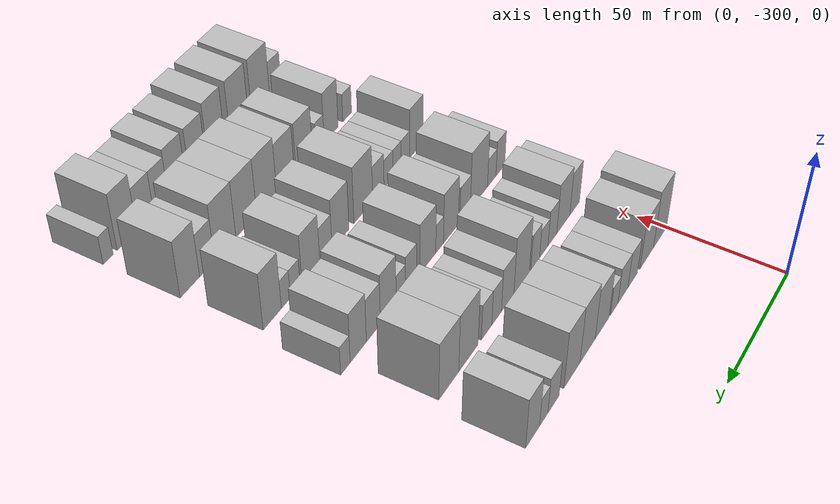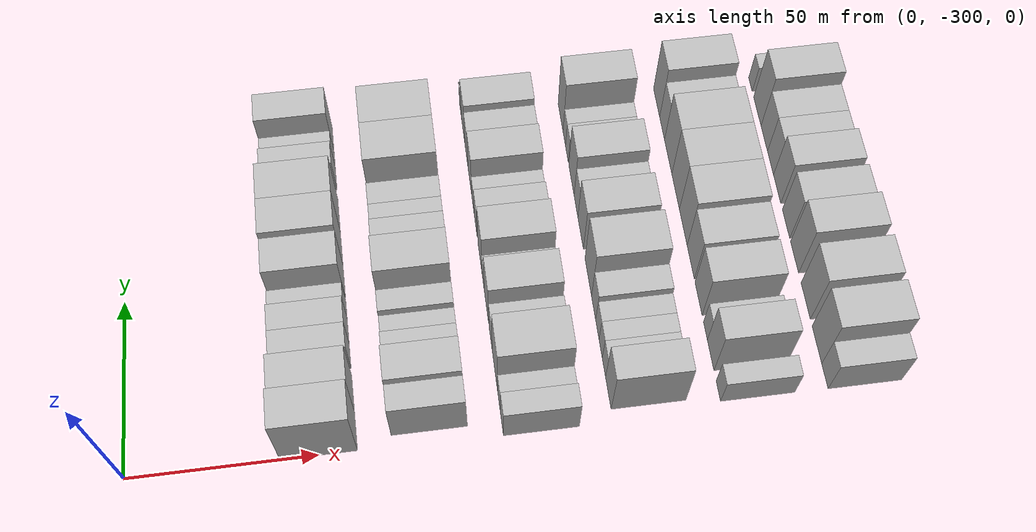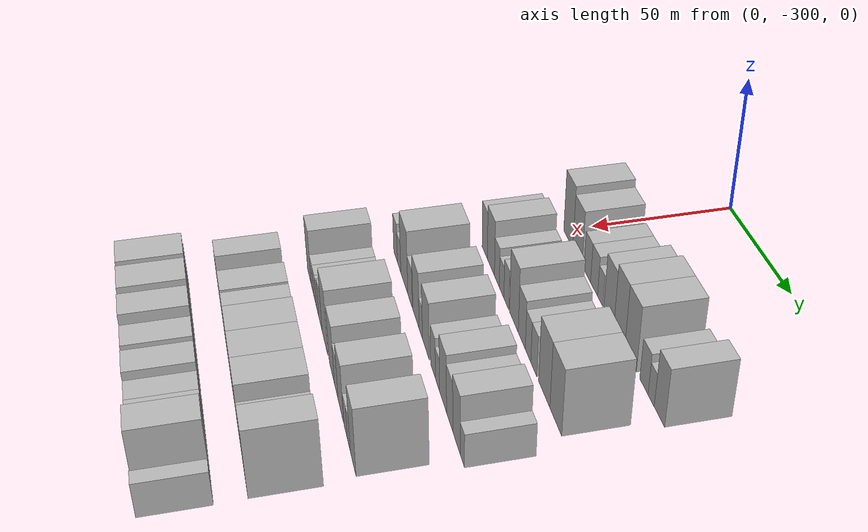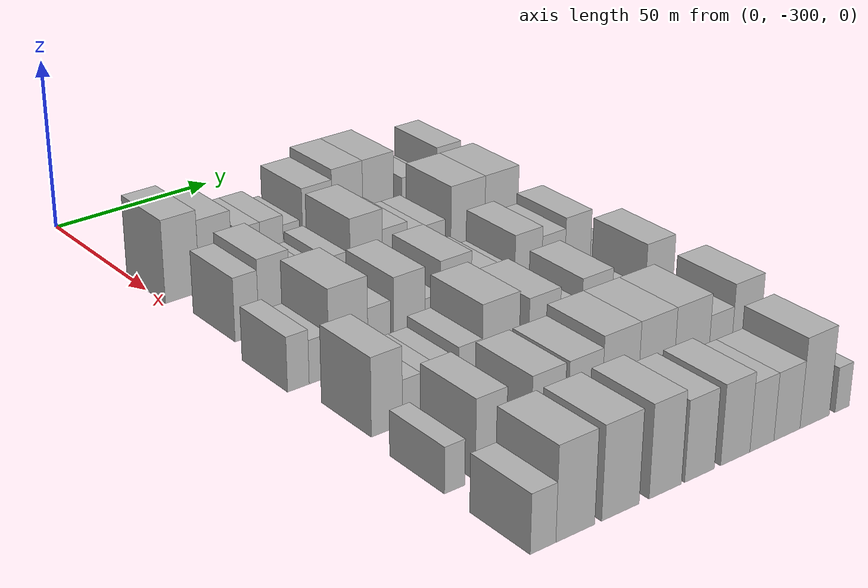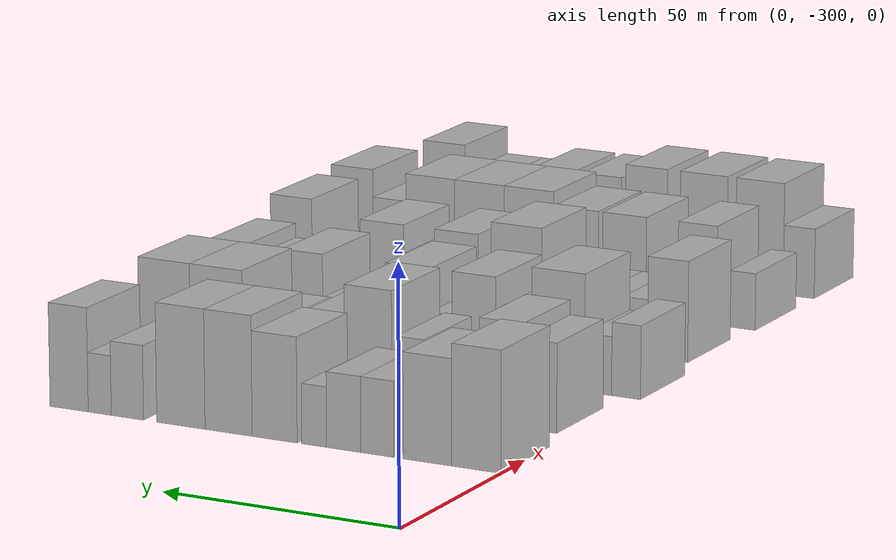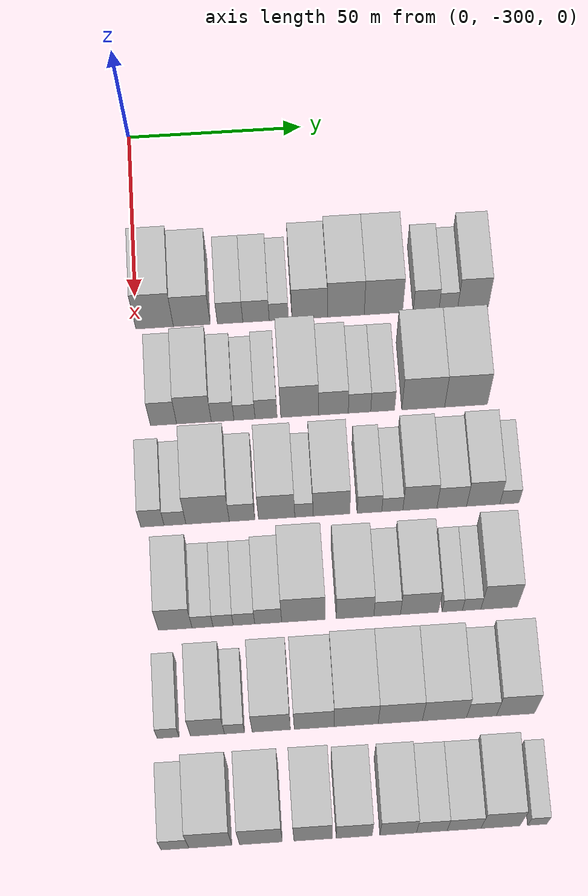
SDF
<sdf version="1.6">
 <world name="default">
  <model name="building_23">
   <static>1</static>
   <pose>50.0000 -294.7615 0 0.000000 0.000000 0.000000</pose>
   <link name="link">
    <pose>0 0 12.00 0 0 0</pose>
    <collision name="collision"><geometry><box><size>20.0000 10.5422 24.0000</size></box></geometry></collision>
    <visual name="visual">
     <cast_shadows>0</cast_shadows>
     <geometry><box><size>20.0000 10.5422 24.0000</size></box></geometry>
     <material>
      <script>
       <uri>model://HANNAS_wall/materials/scripts</uri>
       <uri>model://HANNAS_wall/materials/textures</uri>
       <name>vrc/HANNAS_wall</name>
      </script>
     </material>
    </visual>
   </link>
  </model>
  <model name="building_24">
   <static>1</static>
   <pose>50.0000 -284.2985 0 0.000000 0.000000 0.000000</pose>
   <link name="link">
    <pose>0 0 10.50 0 0 0</pose>
    <collision name="collision"><geometry><box><size>20.0000 10.3838 21.0000</size></box></geometry></collision>
    <visual name="visual">
     <cast_shadows>0</cast_shadows>
     <geometry><box><size>20.0000 10.3838 21.0000</size></box></geometry>
     <material>
      <script>
       <uri>model://HANNAS_wall/materials/scripts</uri>
       <uri>model://HANNAS_wall/materials/textures</uri>
       <name>vrc/HANNAS_wall</name>
      </script>
     </material>
    </visual>
   </link>
  </model>
  <model name="building_25">
   <static>1</static>
   <pose>50.0000 -273.5292 0 0.000000 0.000000 0.000000</pose>
   <link name="link">
    <pose>0 0 7.50 0 0 0</pose>
    <collision name="collision"><geometry><box><size>20.0000 7.1548 15.0000</size></box></geometry></collision>
    <visual name="visual">
     <cast_shadows>0</cast_shadows>
     <geometry><box><size>20.0000 7.1548 15.0000</size></box></geometry>
     <material>
      <script>
       <uri>model://HANNAS_wall/materials/scripts</uri>
       <uri>model://HANNAS_wall/materials/textures</uri>
       <name>vrc/HANNAS_wall</name>
      </script>
     </material>
    </visual>
   </link>
  </model>
  <model name="building_26">
   <static>1</static>
   <pose>50.0000 -266.2333 0 0.000000 0.000000 0.000000</pose>
   <link name="link">
    <pose>0 0 7.50 0 0 0</pose>
    <collision name="collision"><geometry><box><size>20.0000 7.4371 15.0000</size></box></geometry></collision>
    <visual name="visual">
     <cast_shadows>0</cast_shadows>
     <geometry><box><size>20.0000 7.4371 15.0000</size></box></geometry>
     <material>
      <script>
       <uri>model://HANNAS_wall/materials/scripts</uri>
       <uri>model://HANNAS_wall/materials/textures</uri>
       <name>vrc/HANNAS_wall</name>
      </script>
     </material>
    </visual>
   </link>
  </model>
  <model name="building_27">
   <static>1</static>
   <pose>50.0000 -259.8109 0 0.000000 0.000000 0.000000</pose>
   <link name="link">
    <pose>0 0 6.00 0 0 0</pose>
    <collision name="collision"><geometry><box><size>20.0000 5.4075 12.0000</size></box></geometry></collision>
    <visual name="visual">
     <cast_shadows>0</cast_shadows>
     <geometry><box><size>20.0000 5.4075 12.0000</size></box></geometry>
     <material>
      <script>
       <uri>model://HANNAS_wall/materials/scripts</uri>
       <uri>model://HANNAS_wall/materials/textures</uri>
       <name>vrc/HANNAS_wall</name>
      </script>
     </material>
    </visual>
   </link>
  </model>
  <model name="building_28">
   <static>1</static>
   <pose>50.0000 -251.1375 0 0.000000 0.000000 0.000000</pose>
   <link name="link">
    <pose>0 0 10.50 0 0 0</pose>
    <collision name="collision"><geometry><box><size>20.0000 9.9392 21.0000</size></box></geometry></collision>
    <visual name="visual">
     <cast_shadows>0</cast_shadows>
     <geometry><box><size>20.0000 9.9392 21.0000</size></box></geometry>
     <material>
      <script>
       <uri>model://HANNAS_wall/materials/scripts</uri>
       <uri>model://HANNAS_wall/materials/textures</uri>
       <name>vrc/HANNAS_wall</name>
      </script>
     </material>
    </visual>
   </link>
  </model>
  <model name="building_29">
   <static>1</static>
   <pose>50.0000 -240.9504 0 0.000000 0.000000 0.000000</pose>
   <link name="link">
    <pose>0 0 12.00 0 0 0</pose>
    <collision name="collision"><geometry><box><size>20.0000 10.4351 24.0000</size></box></geometry></collision>
    <visual name="visual">
     <cast_shadows>0</cast_shadows>
     <geometry><box><size>20.0000 10.4351 24.0000</size></box></geometry>
     <material>
      <script>
       <uri>model://HANNAS_wall/materials/scripts</uri>
       <uri>model://HANNAS_wall/materials/textures</uri>
       <name>vrc/HANNAS_wall</name>
      </script>
     </material>
    </visual>
   </link>
  </model>
  <model name="building_30">
   <static>1</static>
   <pose>50.0000 -230.3285 0 0.000000 0.000000 0.000000</pose>
   <link name="link">
    <pose>0 0 12.00 0 0 0</pose>
    <collision name="collision"><geometry><box><size>20.0000 10.8086 24.0000</size></box></geometry></collision>
    <visual name="visual">
     <cast_shadows>0</cast_shadows>
     <geometry><box><size>20.0000 10.8086 24.0000</size></box></geometry>
     <material>
      <script>
       <uri>model://HANNAS_wall/materials/scripts</uri>
       <uri>model://HANNAS_wall/materials/textures</uri>
       <name>vrc/HANNAS_wall</name>
      </script>
     </material>
    </visual>
   </link>
  </model>
  <model name="building_31">
   <static>1</static>
   <pose>50.0000 -218.2917 0 0.000000 0.000000 0.000000</pose>
   <link name="link">
    <pose>0 0 7.50 0 0 0</pose>
    <collision name="collision"><geometry><box><size>20.0000 7.2650 15.0000</size></box></geometry></collision>
    <visual name="visual">
     <cast_shadows>0</cast_shadows>
     <geometry><box><size>20.0000 7.2650 15.0000</size></box></geometry>
     <material>
      <script>
       <uri>model://HANNAS_wall/materials/scripts</uri>
       <uri>model://HANNAS_wall/materials/textures</uri>
       <name>vrc/HANNAS_wall</name>
      </script>
     </material>
    </visual>
   </link>
  </model>
  <model name="building_32">
   <static>1</static>
   <pose>50.0000 -212.0230 0 0.000000 0.000000 0.000000</pose>
   <link name="link">
    <pose>0 0 6.00 0 0 0</pose>
    <collision name="collision"><geometry><box><size>20.0000 5.2725 12.0000</size></box></geometry></collision>
    <visual name="visual">
     <cast_shadows>0</cast_shadows>
     <geometry><box><size>20.0000 5.2725 12.0000</size></box></geometry>
     <material>
      <script>
       <uri>model://HANNAS_wall/materials/scripts</uri>
       <uri>model://HANNAS_wall/materials/textures</uri>
       <name>vrc/HANNAS_wall</name>
      </script>
     </material>
    </visual>
   </link>
  </model>
  <model name="building_33">
   <static>1</static>
   <pose>50.0000 -205.0334 0 0.000000 0.000000 0.000000</pose>
   <link name="link">
    <pose>0 0 10.50 0 0 0</pose>
    <collision name="collision"><geometry><box><size>20.0000 8.7068 21.0000</size></box></geometry></collision>
    <visual name="visual">
     <cast_shadows>0</cast_shadows>
     <geometry><box><size>20.0000 8.7068 21.0000</size></box></geometry>
     <material>
      <script>
       <uri>model://HANNAS_wall/materials/scripts</uri>
       <uri>model://HANNAS_wall/materials/textures</uri>
       <name>vrc/HANNAS_wall</name>
      </script>
     </material>
    </visual>
   </link>
  </model>
  <model name="building_130">
   <static>1</static>
   <pose>79.0000 -293.4210 0 0.000000 0.000000 0.000000</pose>
   <link name="link">
    <pose>0 0 9.00 0 0 0</pose>
    <collision name="collision"><geometry><box><size>20.0000 7.2270 18.0000</size></box></geometry></collision>
    <visual name="visual">
     <cast_shadows>0</cast_shadows>
     <geometry><box><size>20.0000 7.2270 18.0000</size></box></geometry>
     <material>
      <script>
       <uri>model://HANNAS_wall/materials/scripts</uri>
       <uri>model://HANNAS_wall/materials/textures</uri>
       <name>vrc/HANNAS_wall</name>
      </script>
     </material>
    </visual>
   </link>
  </model>
  <model name="building_131">
   <static>1</static>
   <pose>79.0000 -285.0231 0 0.000000 0.000000 0.000000</pose>
   <link name="link">
    <pose>0 0 10.50 0 0 0</pose>
    <collision name="collision"><geometry><box><size>20.0000 9.5687 21.0000</size></box></geometry></collision>
    <visual name="visual">
     <cast_shadows>0</cast_shadows>
     <geometry><box><size>20.0000 9.5687 21.0000</size></box></geometry>
     <material>
      <script>
       <uri>model://HANNAS_wall/materials/scripts</uri>
       <uri>model://HANNAS_wall/materials/textures</uri>
       <name>vrc/HANNAS_wall</name>
      </script>
     </material>
    </visual>
   </link>
  </model>
  <model name="building_132">
   <static>1</static>
   <pose>79.0000 -277.0917 0 0.000000 0.000000 0.000000</pose>
   <link name="link">
    <pose>0 0 7.50 0 0 0</pose>
    <collision name="collision"><geometry><box><size>20.0000 6.2942 15.0000</size></box></geometry></collision>
    <visual name="visual">
     <cast_shadows>0</cast_shadows>
     <geometry><box><size>20.0000 6.2942 15.0000</size></box></geometry>
     <material>
      <script>
       <uri>model://HANNAS_wall/materials/scripts</uri>
       <uri>model://HANNAS_wall/materials/textures</uri>
       <name>vrc/HANNAS_wall</name>
      </script>
     </material>
    </visual>
   </link>
  </model>
  <model name="building_133">
   <static>1</static>
   <pose>79.0000 -271.0221 0 0.000000 0.000000 0.000000</pose>
   <link name="link">
    <pose>0 0 6.00 0 0 0</pose>
    <collision name="collision"><geometry><box><size>20.0000 5.8450 12.0000</size></box></geometry></collision>
    <visual name="visual">
     <cast_shadows>0</cast_shadows>
     <geometry><box><size>20.0000 5.8450 12.0000</size></box></geometry>
     <material>
      <script>
       <uri>model://HANNAS_wall/materials/scripts</uri>
       <uri>model://HANNAS_wall/materials/textures</uri>
       <name>vrc/HANNAS_wall</name>
      </script>
     </material>
    </visual>
   </link>
  </model>
  <model name="building_134">
   <static>1</static>
   <pose>79.0000 -265.0410 0 0.000000 0.000000 0.000000</pose>
   <link name="link">
    <pose>0 0 7.50 0 0 0</pose>
    <collision name="collision"><geometry><box><size>20.0000 6.1172 15.0000</size></box></geometry></collision>
    <visual name="visual">
     <cast_shadows>0</cast_shadows>
     <geometry><box><size>20.0000 6.1172 15.0000</size></box></geometry>
     <material>
      <script>
       <uri>model://HANNAS_wall/materials/scripts</uri>
       <uri>model://HANNAS_wall/materials/textures</uri>
       <name>vrc/HANNAS_wall</name>
      </script>
     </material>
    </visual>
   </link>
  </model>
  <model name="building_135">
   <static>1</static>
   <pose>79.0000 -255.7287 0 0.000000 0.000000 0.000000</pose>
   <link name="link">
    <pose>0 0 12.00 0 0 0</pose>
    <collision name="collision"><geometry><box><size>20.0000 10.5073 24.0000</size></box></geometry></collision>
    <visual name="visual">
     <cast_shadows>0</cast_shadows>
     <geometry><box><size>20.0000 10.5073 24.0000</size></box></geometry>
     <material>
      <script>
       <uri>model://HANNAS_wall/materials/scripts</uri>
       <uri>model://HANNAS_wall/materials/textures</uri>
       <name>vrc/HANNAS_wall</name>
      </script>
     </material>
    </visual>
   </link>
  </model>
  <model name="building_136">
   <static>1</static>
   <pose>79.0000 -246.3760 0 0.000000 0.000000 0.000000</pose>
   <link name="link">
    <pose>0 0 9.00 0 0 0</pose>
    <collision name="collision"><geometry><box><size>20.0000 8.1982 18.0000</size></box></geometry></collision>
    <visual name="visual">
     <cast_shadows>0</cast_shadows>
     <geometry><box><size>20.0000 8.1982 18.0000</size></box></geometry>
     <material>
      <script>
       <uri>model://HANNAS_wall/materials/scripts</uri>
       <uri>model://HANNAS_wall/materials/textures</uri>
       <name>vrc/HANNAS_wall</name>
      </script>
     </material>
    </visual>
   </link>
  </model>
  <model name="building_137">
   <static>1</static>
   <pose>79.0000 -239.1618 0 0.000000 0.000000 0.000000</pose>
   <link name="link">
    <pose>0 0 7.50 0 0 0</pose>
    <collision name="collision"><geometry><box><size>20.0000 6.2302 15.0000</size></box></geometry></collision>
    <visual name="visual">
     <cast_shadows>0</cast_shadows>
     <geometry><box><size>20.0000 6.2302 15.0000</size></box></geometry>
     <material>
      <script>
       <uri>model://HANNAS_wall/materials/scripts</uri>
       <uri>model://HANNAS_wall/materials/textures</uri>
       <name>vrc/HANNAS_wall</name>
      </script>
     </material>
    </visual>
   </link>
  </model>
  <model name="building_138">
   <static>1</static>
   <pose>79.0000 -232.7305 0 0.000000 0.000000 0.000000</pose>
   <link name="link">
    <pose>0 0 7.50 0 0 0</pose>
    <collision name="collision"><geometry><box><size>20.0000 6.6325 15.0000</size></box></geometry></collision>
    <visual name="visual">
     <cast_shadows>0</cast_shadows>
     <geometry><box><size>20.0000 6.6325 15.0000</size></box></geometry>
     <material>
      <script>
       <uri>model://HANNAS_wall/materials/scripts</uri>
       <uri>model://HANNAS_wall/materials/textures</uri>
       <name>vrc/HANNAS_wall</name>
      </script>
     </material>
    </visual>
   </link>
  </model>
  <model name="building_139">
   <static>1</static>
   <pose>79.0000 -221.4599 0 0.000000 0.000000 0.000000</pose>
   <link name="link">
    <pose>0 0 12.00 0 0 0</pose>
    <collision name="collision"><geometry><box><size>20.0000 11.9085 24.0000</size></box></geometry></collision>
    <visual name="visual">
     <cast_shadows>0</cast_shadows>
     <geometry><box><size>20.0000 11.9085 24.0000</size></box></geometry>
     <material>
      <script>
       <uri>model://HANNAS_wall/materials/scripts</uri>
       <uri>model://HANNAS_wall/materials/textures</uri>
       <name>vrc/HANNAS_wall</name>
      </script>
     </material>
    </visual>
   </link>
  </model>
  <model name="building_140">
   <static>1</static>
   <pose>79.0000 -209.5608 0 0.000000 0.000000 0.000000</pose>
   <link name="link">
    <pose>0 0 12.00 0 0 0</pose>
    <collision name="collision"><geometry><box><size>20.0000 11.8897 24.0000</size></box></geometry></collision>
    <visual name="visual">
     <cast_shadows>0</cast_shadows>
     <geometry><box><size>20.0000 11.8897 24.0000</size></box></geometry>
     <material>
      <script>
       <uri>model://HANNAS_wall/materials/scripts</uri>
       <uri>model://HANNAS_wall/materials/textures</uri>
       <name>vrc/HANNAS_wall</name>
      </script>
     </material>
    </visual>
   </link>
  </model>
  <model name="building_242">
   <static>1</static>
   <pose>108.0000 -297.6198 0 0.000000 0.000000 0.000000</pose>
   <link name="link">
    <pose>0 0 7.50 0 0 0</pose>
    <collision name="collision"><geometry><box><size>20.0000 6.3445 15.0000</size></box></geometry></collision>
    <visual name="visual">
     <cast_shadows>0</cast_shadows>
     <geometry><box><size>20.0000 6.3445 15.0000</size></box></geometry>
     <material>
      <script>
       <uri>model://HANNAS_wall/materials/scripts</uri>
       <uri>model://HANNAS_wall/materials/textures</uri>
       <name>vrc/HANNAS_wall</name>
      </script>
     </material>
    </visual>
   </link>
  </model>
  <model name="building_243">
   <static>1</static>
   <pose>108.0000 -291.4867 0 0.000000 0.000000 0.000000</pose>
   <link name="link">
    <pose>0 0 6.00 0 0 0</pose>
    <collision name="collision"><geometry><box><size>20.0000 5.9217 12.0000</size></box></geometry></collision>
    <visual name="visual">
     <cast_shadows>0</cast_shadows>
     <geometry><box><size>20.0000 5.9217 12.0000</size></box></geometry>
     <material>
      <script>
       <uri>model://HANNAS_wall/materials/scripts</uri>
       <uri>model://HANNAS_wall/materials/textures</uri>
       <name>vrc/HANNAS_wall</name>
      </script>
     </material>
    </visual>
   </link>
  </model>
  <model name="building_244">
   <static>1</static>
   <pose>108.0000 -282.6183 0 0.000000 0.000000 0.000000</pose>
   <link name="link">
    <pose>0 0 12.00 0 0 0</pose>
    <collision name="collision"><geometry><box><size>20.0000 11.8151 24.0000</size></box></geometry></collision>
    <visual name="visual">
     <cast_shadows>0</cast_shadows>
     <geometry><box><size>20.0000 11.8151 24.0000</size></box></geometry>
     <material>
      <script>
       <uri>model://HANNAS_wall/materials/scripts</uri>
       <uri>model://HANNAS_wall/materials/textures</uri>
       <name>vrc/HANNAS_wall</name>
      </script>
     </material>
    </visual>
   </link>
  </model>
  <model name="building_245">
   <static>1</static>
   <pose>108.0000 -273.2292 0 0.000000 0.000000 0.000000</pose>
   <link name="link">
    <pose>0 0 7.50 0 0 0</pose>
    <collision name="collision"><geometry><box><size>20.0000 6.9633 15.0000</size></box></geometry></collision>
    <visual name="visual">
     <cast_shadows>0</cast_shadows>
     <geometry><box><size>20.0000 6.9633 15.0000</size></box></geometry>
     <material>
      <script>
       <uri>model://HANNAS_wall/materials/scripts</uri>
       <uri>model://HANNAS_wall/materials/textures</uri>
       <name>vrc/HANNAS_wall</name>
      </script>
     </material>
    </visual>
   </link>
  </model>
  <model name="building_246">
   <static>1</static>
   <pose>108.0000 -263.8202 0 0.000000 0.000000 0.000000</pose>
   <link name="link">
    <pose>0 0 10.50 0 0 0</pose>
    <collision name="collision"><geometry><box><size>20.0000 9.8548 21.0000</size></box></geometry></collision>
    <visual name="visual">
     <cast_shadows>0</cast_shadows>
     <geometry><box><size>20.0000 9.8548 21.0000</size></box></geometry>
     <material>
      <script>
       <uri>model://HANNAS_wall/materials/scripts</uri>
       <uri>model://HANNAS_wall/materials/textures</uri>
       <name>vrc/HANNAS_wall</name>
      </script>
     </material>
    </visual>
   </link>
  </model>
  <model name="building_247">
   <static>1</static>
   <pose>108.0000 -256.4093 0 0.000000 0.000000 0.000000</pose>
   <link name="link">
    <pose>0 0 6.00 0 0 0</pose>
    <collision name="collision"><geometry><box><size>20.0000 4.9670 12.0000</size></box></geometry></collision>
    <visual name="visual">
     <cast_shadows>0</cast_shadows>
     <geometry><box><size>20.0000 4.9670 12.0000</size></box></geometry>
     <material>
      <script>
       <uri>model://HANNAS_wall/materials/scripts</uri>
       <uri>model://HANNAS_wall/materials/textures</uri>
       <name>vrc/HANNAS_wall</name>
      </script>
     </material>
    </visual>
   </link>
  </model>
  <model name="building_248">
   <static>1</static>
   <pose>108.0000 -248.9079 0 0.000000 0.000000 0.000000</pose>
   <link name="link">
    <pose>0 0 10.50 0 0 0</pose>
    <collision name="collision"><geometry><box><size>20.0000 10.0359 21.0000</size></box></geometry></collision>
    <visual name="visual">
     <cast_shadows>0</cast_shadows>
     <geometry><box><size>20.0000 10.0359 21.0000</size></box></geometry>
     <material>
      <script>
       <uri>model://HANNAS_wall/materials/scripts</uri>
       <uri>model://HANNAS_wall/materials/textures</uri>
       <name>vrc/HANNAS_wall</name>
      </script>
     </material>
    </visual>
   </link>
  </model>
  <model name="building_249">
   <static>1</static>
   <pose>108.0000 -238.5203 0 0.000000 0.000000 0.000000</pose>
   <link name="link">
    <pose>0 0 7.50 0 0 0</pose>
    <collision name="collision"><geometry><box><size>20.0000 6.7394 15.0000</size></box></geometry></collision>
    <visual name="visual">
     <cast_shadows>0</cast_shadows>
     <geometry><box><size>20.0000 6.7394 15.0000</size></box></geometry>
     <material>
      <script>
       <uri>model://HANNAS_wall/materials/scripts</uri>
       <uri>model://HANNAS_wall/materials/textures</uri>
       <name>vrc/HANNAS_wall</name>
      </script>
     </material>
    </visual>
   </link>
  </model>
  <model name="building_250">
   <static>1</static>
   <pose>108.0000 -232.2845 0 0.000000 0.000000 0.000000</pose>
   <link name="link">
    <pose>0 0 6.00 0 0 0</pose>
    <collision name="collision"><geometry><box><size>20.0000 5.7323 12.0000</size></box></geometry></collision>
    <visual name="visual">
     <cast_shadows>0</cast_shadows>
     <geometry><box><size>20.0000 5.7323 12.0000</size></box></geometry>
     <material>
      <script>
       <uri>model://HANNAS_wall/materials/scripts</uri>
       <uri>model://HANNAS_wall/materials/textures</uri>
       <name>vrc/HANNAS_wall</name>
      </script>
     </material>
    </visual>
   </link>
  </model>
  <model name="building_251">
   <static>1</static>
   <pose>108.0000 -224.7598 0 0.000000 0.000000 0.000000</pose>
   <link name="link">
    <pose>0 0 10.50 0 0 0</pose>
    <collision name="collision"><geometry><box><size>20.0000 9.3171 21.0000</size></box></geometry></collision>
    <visual name="visual">
     <cast_shadows>0</cast_shadows>
     <geometry><box><size>20.0000 9.3171 21.0000</size></box></geometry>
     <material>
      <script>
       <uri>model://HANNAS_wall/materials/scripts</uri>
       <uri>model://HANNAS_wall/materials/textures</uri>
       <name>vrc/HANNAS_wall</name>
      </script>
     </material>
    </visual>
   </link>
  </model>
  <model name="building_252">
   <static>1</static>
   <pose>108.0000 -216.0383 0 0.000000 0.000000 0.000000</pose>
   <link name="link">
    <pose>0 0 9.00 0 0 0</pose>
    <collision name="collision"><geometry><box><size>20.0000 8.1259 18.0000</size></box></geometry></collision>
    <visual name="visual">
     <cast_shadows>0</cast_shadows>
     <geometry><box><size>20.0000 8.1259 18.0000</size></box></geometry>
     <material>
      <script>
       <uri>model://HANNAS_wall/materials/scripts</uri>
       <uri>model://HANNAS_wall/materials/textures</uri>
       <name>vrc/HANNAS_wall</name>
      </script>
     </material>
    </visual>
   </link>
  </model>
  <model name="building_253">
   <static>1</static>
   <pose>108.0000 -207.4296 0 0.000000 0.000000 0.000000</pose>
   <link name="link">
    <pose>0 0 10.50 0 0 0</pose>
    <collision name="collision"><geometry><box><size>20.0000 9.0914 21.0000</size></box></geometry></collision>
    <visual name="visual">
     <cast_shadows>0</cast_shadows>
     <geometry><box><size>20.0000 9.0914 21.0000</size></box></geometry>
     <material>
      <script>
       <uri>model://HANNAS_wall/materials/scripts</uri>
       <uri>model://HANNAS_wall/materials/textures</uri>
       <name>vrc/HANNAS_wall</name>
      </script>
     </material>
    </visual>
   </link>
  </model>
  <model name="building_254">
   <static>1</static>
   <pose>108.0000 -200.2576 0 0.000000 0.000000 0.000000</pose>
   <link name="link">
    <pose>0 0 6.00 0 0 0</pose>
    <collision name="collision"><geometry><box><size>20.0000 5.2527 12.0000</size></box></geometry></collision>
    <visual name="visual">
     <cast_shadows>0</cast_shadows>
     <geometry><box><size>20.0000 5.2527 12.0000</size></box></geometry>
     <material>
      <script>
       <uri>model://HANNAS_wall/materials/scripts</uri>
       <uri>model://HANNAS_wall/materials/textures</uri>
       <name>vrc/HANNAS_wall</name>
      </script>
     </material>
    </visual>
   </link>
  </model>
  <model name="building_354">
   <static>1</static>
   <pose>137.0000 -292.6557 0 0.000000 0.000000 0.000000</pose>
   <link name="link">
    <pose>0 0 10.50 0 0 0</pose>
    <collision name="collision"><geometry><box><size>20.0000 8.9936 21.0000</size></box></geometry></collision>
    <visual name="visual">
     <cast_shadows>0</cast_shadows>
     <geometry><box><size>20.0000 8.9936 21.0000</size></box></geometry>
     <material>
      <script>
       <uri>model://HANNAS_wall/materials/scripts</uri>
       <uri>model://HANNAS_wall/materials/textures</uri>
       <name>vrc/HANNAS_wall</name>
      </script>
     </material>
    </visual>
   </link>
  </model>
  <model name="building_355">
   <static>1</static>
   <pose>137.0000 -285.3662 0 0.000000 0.000000 0.000000</pose>
   <link name="link">
    <pose>0 0 6.00 0 0 0</pose>
    <collision name="collision"><geometry><box><size>20.0000 5.5853 12.0000</size></box></geometry></collision>
    <visual name="visual">
     <cast_shadows>0</cast_shadows>
     <geometry><box><size>20.0000 5.5853 12.0000</size></box></geometry>
     <material>
      <script>
       <uri>model://HANNAS_wall/materials/scripts</uri>
       <uri>model://HANNAS_wall/materials/textures</uri>
       <name>vrc/HANNAS_wall</name>
      </script>
     </material>
    </visual>
   </link>
  </model>
  <model name="building_356">
   <static>1</static>
   <pose>137.0000 -279.8580 0 0.000000 0.000000 0.000000</pose>
   <link name="link">
    <pose>0 0 6.00 0 0 0</pose>
    <collision name="collision"><geometry><box><size>20.0000 5.4311 12.0000</size></box></geometry></collision>
    <visual name="visual">
     <cast_shadows>0</cast_shadows>
     <geometry><box><size>20.0000 5.4311 12.0000</size></box></geometry>
     <material>
      <script>
       <uri>model://HANNAS_wall/materials/scripts</uri>
       <uri>model://HANNAS_wall/materials/textures</uri>
       <name>vrc/HANNAS_wall</name>
      </script>
     </material>
    </visual>
   </link>
  </model>
  <model name="building_357">
   <static>1</static>
   <pose>137.0000 -274.2680 0 0.000000 0.000000 0.000000</pose>
   <link name="link">
    <pose>0 0 6.00 0 0 0</pose>
    <collision name="collision"><geometry><box><size>20.0000 5.7489 12.0000</size></box></geometry></collision>
    <visual name="visual">
     <cast_shadows>0</cast_shadows>
     <geometry><box><size>20.0000 5.7489 12.0000</size></box></geometry>
     <material>
      <script>
       <uri>model://HANNAS_wall/materials/scripts</uri>
       <uri>model://HANNAS_wall/materials/textures</uri>
       <name>vrc/HANNAS_wall</name>
      </script>
     </material>
    </visual>
   </link>
  </model>
  <model name="building_358">
   <static>1</static>
   <pose>137.0000 -267.7893 0 0.000000 0.000000 0.000000</pose>
   <link name="link">
    <pose>0 0 7.50 0 0 0</pose>
    <collision name="collision"><geometry><box><size>20.0000 7.2085 15.0000</size></box></geometry></collision>
    <visual name="visual">
     <cast_shadows>0</cast_shadows>
     <geometry><box><size>20.0000 7.2085 15.0000</size></box></geometry>
     <material>
      <script>
       <uri>model://HANNAS_wall/materials/scripts</uri>
       <uri>model://HANNAS_wall/materials/textures</uri>
       <name>vrc/HANNAS_wall</name>
      </script>
     </material>
    </visual>
   </link>
  </model>
  <model name="building_359">
   <static>1</static>
   <pose>137.0000 -258.3830 0 0.000000 0.000000 0.000000</pose>
   <link name="link">
    <pose>0 0 12.00 0 0 0</pose>
    <collision name="collision"><geometry><box><size>20.0000 11.6041 24.0000</size></box></geometry></collision>
    <visual name="visual">
     <cast_shadows>0</cast_shadows>
     <geometry><box><size>20.0000 11.6041 24.0000</size></box></geometry>
     <material>
      <script>
       <uri>model://HANNAS_wall/materials/scripts</uri>
       <uri>model://HANNAS_wall/materials/textures</uri>
       <name>vrc/HANNAS_wall</name>
      </script>
     </material>
    </visual>
   </link>
  </model>
  <model name="building_360">
   <static>1</static>
   <pose>137.0000 -244.5359 0 0.000000 0.000000 0.000000</pose>
   <link name="link">
    <pose>0 0 10.50 0 0 0</pose>
    <collision name="collision"><geometry><box><size>20.0000 10.0902 21.0000</size></box></geometry></collision>
    <visual name="visual">
     <cast_shadows>0</cast_shadows>
     <geometry><box><size>20.0000 10.0902 21.0000</size></box></geometry>
     <material>
      <script>
       <uri>model://HANNAS_wall/materials/scripts</uri>
       <uri>model://HANNAS_wall/materials/textures</uri>
       <name>vrc/HANNAS_wall</name>
      </script>
     </material>
    </visual>
   </link>
  </model>
  <model name="building_361">
   <static>1</static>
   <pose>137.0000 -235.9192 0 0.000000 0.000000 0.000000</pose>
   <link name="link">
    <pose>0 0 7.50 0 0 0</pose>
    <collision name="collision"><geometry><box><size>20.0000 7.1433 15.0000</size></box></geometry></collision>
    <visual name="visual">
     <cast_shadows>0</cast_shadows>
     <geometry><box><size>20.0000 7.1433 15.0000</size></box></geometry>
     <material>
      <script>
       <uri>model://HANNAS_wall/materials/scripts</uri>
       <uri>model://HANNAS_wall/materials/textures</uri>
       <name>vrc/HANNAS_wall</name>
      </script>
     </material>
    </visual>
   </link>
  </model>
  <model name="building_362">
   <static>1</static>
   <pose>137.0000 -227.2579 0 0.000000 0.000000 0.000000</pose>
   <link name="link">
    <pose>0 0 10.50 0 0 0</pose>
    <collision name="collision"><geometry><box><size>20.0000 10.1791 21.0000</size></box></geometry></collision>
    <visual name="visual">
     <cast_shadows>0</cast_shadows>
     <geometry><box><size>20.0000 10.1791 21.0000</size></box></geometry>
     <material>
      <script>
       <uri>model://HANNAS_wall/materials/scripts</uri>
       <uri>model://HANNAS_wall/materials/textures</uri>
       <name>vrc/HANNAS_wall</name>
      </script>
     </material>
    </visual>
   </link>
  </model>
  <model name="building_363">
   <static>1</static>
   <pose>137.0000 -218.4263 0 0.000000 0.000000 0.000000</pose>
   <link name="link">
    <pose>0 0 6.00 0 0 0</pose>
    <collision name="collision"><geometry><box><size>20.0000 5.4841 12.0000</size></box></geometry></collision>
    <visual name="visual">
     <cast_shadows>0</cast_shadows>
     <geometry><box><size>20.0000 5.4841 12.0000</size></box></geometry>
     <material>
      <script>
       <uri>model://HANNAS_wall/materials/scripts</uri>
       <uri>model://HANNAS_wall/materials/textures</uri>
       <name>vrc/HANNAS_wall</name>
      </script>
     </material>
    </visual>
   </link>
  </model>
  <model name="building_364">
   <static>1</static>
   <pose>137.0000 -213.2080 0 0.000000 0.000000 0.000000</pose>
   <link name="link">
    <pose>0 0 6.00 0 0 0</pose>
    <collision name="collision"><geometry><box><size>20.0000 4.9526 12.0000</size></box></geometry></collision>
    <visual name="visual">
     <cast_shadows>0</cast_shadows>
     <geometry><box><size>20.0000 4.9526 12.0000</size></box></geometry>
     <material>
      <script>
       <uri>model://HANNAS_wall/materials/scripts</uri>
       <uri>model://HANNAS_wall/materials/textures</uri>
       <name>vrc/HANNAS_wall</name>
      </script>
     </material>
    </visual>
   </link>
  </model>
  <model name="building_365">
   <static>1</static>
   <pose>137.0000 -205.8166 0 0.000000 0.000000 0.000000</pose>
   <link name="link">
    <pose>0 0 12.00 0 0 0</pose>
    <collision name="collision"><geometry><box><size>20.0000 9.8303 24.0000</size></box></geometry></collision>
    <visual name="visual">
     <cast_shadows>0</cast_shadows>
     <geometry><box><size>20.0000 9.8303 24.0000</size></box></geometry>
     <material>
      <script>
       <uri>model://HANNAS_wall/materials/scripts</uri>
       <uri>model://HANNAS_wall/materials/textures</uri>
       <name>vrc/HANNAS_wall</name>
      </script>
     </material>
    </visual>
   </link>
  </model>
  <model name="building_469">
   <static>1</static>
   <pose>166.0000 -295.7487 0 0.000000 0.000000 0.000000</pose>
   <link name="link">
    <pose>0 0 6.00 0 0 0</pose>
    <collision name="collision"><geometry><box><size>20.0000 5.7447 12.0000</size></box></geometry></collision>
    <visual name="visual">
     <cast_shadows>0</cast_shadows>
     <geometry><box><size>20.0000 5.7447 12.0000</size></box></geometry>
     <material>
      <script>
       <uri>model://HANNAS_wall/materials/scripts</uri>
       <uri>model://HANNAS_wall/materials/textures</uri>
       <name>vrc/HANNAS_wall</name>
      </script>
     </material>
    </visual>
   </link>
  </model>
  <model name="building_470">
   <static>1</static>
   <pose>166.0000 -285.4264 0 0.000000 0.000000 0.000000</pose>
   <link name="link">
    <pose>0 0 10.50 0 0 0</pose>
    <collision name="collision"><geometry><box><size>20.0000 8.8998 21.0000</size></box></geometry></collision>
    <visual name="visual">
     <cast_shadows>0</cast_shadows>
     <geometry><box><size>20.0000 8.8998 21.0000</size></box></geometry>
     <material>
      <script>
       <uri>model://HANNAS_wall/materials/scripts</uri>
       <uri>model://HANNAS_wall/materials/textures</uri>
       <name>vrc/HANNAS_wall</name>
      </script>
     </material>
    </visual>
   </link>
  </model>
  <model name="building_471">
   <static>1</static>
   <pose>166.0000 -278.3225 0 0.000000 0.000000 0.000000</pose>
   <link name="link">
    <pose>0 0 6.00 0 0 0</pose>
    <collision name="collision"><geometry><box><size>20.0000 5.3080 12.0000</size></box></geometry></collision>
    <visual name="visual">
     <cast_shadows>0</cast_shadows>
     <geometry><box><size>20.0000 5.3080 12.0000</size></box></geometry>
     <material>
      <script>
       <uri>model://HANNAS_wall/materials/scripts</uri>
       <uri>model://HANNAS_wall/materials/textures</uri>
       <name>vrc/HANNAS_wall</name>
      </script>
     </material>
    </visual>
   </link>
  </model>
  <model name="building_472">
   <static>1</static>
   <pose>166.0000 -268.6355 0 0.000000 0.000000 0.000000</pose>
   <link name="link">
    <pose>0 0 10.50 0 0 0</pose>
    <collision name="collision"><geometry><box><size>20.0000 10.0659 21.0000</size></box></geometry></collision>
    <visual name="visual">
     <cast_shadows>0</cast_shadows>
     <geometry><box><size>20.0000 10.0659 21.0000</size></box></geometry>
     <material>
      <script>
       <uri>model://HANNAS_wall/materials/scripts</uri>
       <uri>model://HANNAS_wall/materials/textures</uri>
       <name>vrc/HANNAS_wall</name>
      </script>
     </material>
    </visual>
   </link>
  </model>
  <model name="building_473">
   <static>1</static>
   <pose>166.0000 -257.3540 0 0.000000 0.000000 0.000000</pose>
   <link name="link">
    <pose>0 0 10.50 0 0 0</pose>
    <collision name="collision"><geometry><box><size>20.0000 10.4971 21.0000</size></box></geometry></collision>
    <visual name="visual">
     <cast_shadows>0</cast_shadows>
     <geometry><box><size>20.0000 10.4971 21.0000</size></box></geometry>
     <material>
      <script>
       <uri>model://HANNAS_wall/materials/scripts</uri>
       <uri>model://HANNAS_wall/materials/textures</uri>
       <name>vrc/HANNAS_wall</name>
      </script>
     </material>
    </visual>
   </link>
  </model>
  <model name="building_474">
   <static>1</static>
   <pose>166.0000 -246.3055 0 0.000000 0.000000 0.000000</pose>
   <link name="link">
    <pose>0 0 12.00 0 0 0</pose>
    <collision name="collision"><geometry><box><size>20.0000 11.6000 24.0000</size></box></geometry></collision>
    <visual name="visual">
     <cast_shadows>0</cast_shadows>
     <geometry><box><size>20.0000 11.6000 24.0000</size></box></geometry>
     <material>
      <script>
       <uri>model://HANNAS_wall/materials/scripts</uri>
       <uri>model://HANNAS_wall/materials/textures</uri>
       <name>vrc/HANNAS_wall</name>
      </script>
     </material>
    </visual>
   </link>
  </model>
  <model name="building_475">
   <static>1</static>
   <pose>166.0000 -234.6823 0 0.000000 0.000000 0.000000</pose>
   <link name="link">
    <pose>0 0 12.00 0 0 0</pose>
    <collision name="collision"><geometry><box><size>20.0000 11.6463 24.0000</size></box></geometry></collision>
    <visual name="visual">
     <cast_shadows>0</cast_shadows>
     <geometry><box><size>20.0000 11.6463 24.0000</size></box></geometry>
     <material>
      <script>
       <uri>model://HANNAS_wall/materials/scripts</uri>
       <uri>model://HANNAS_wall/materials/textures</uri>
       <name>vrc/HANNAS_wall</name>
      </script>
     </material>
    </visual>
   </link>
  </model>
  <model name="building_476">
   <static>1</static>
   <pose>166.0000 -223.0253 0 0.000000 0.000000 0.000000</pose>
   <link name="link">
    <pose>0 0 12.00 0 0 0</pose>
    <collision name="collision"><geometry><box><size>20.0000 11.6678 24.0000</size></box></geometry></collision>
    <visual name="visual">
     <cast_shadows>0</cast_shadows>
     <geometry><box><size>20.0000 11.6678 24.0000</size></box></geometry>
     <material>
      <script>
       <uri>model://HANNAS_wall/materials/scripts</uri>
       <uri>model://HANNAS_wall/materials/textures</uri>
       <name>vrc/HANNAS_wall</name>
      </script>
     </material>
    </visual>
   </link>
  </model>
  <model name="building_477">
   <static>1</static>
   <pose>166.0000 -213.2385 0 0.000000 0.000000 0.000000</pose>
   <link name="link">
    <pose>0 0 9.00 0 0 0</pose>
    <collision name="collision"><geometry><box><size>20.0000 7.9056 18.0000</size></box></geometry></collision>
    <visual name="visual">
     <cast_shadows>0</cast_shadows>
     <geometry><box><size>20.0000 7.9056 18.0000</size></box></geometry>
     <material>
      <script>
       <uri>model://HANNAS_wall/materials/scripts</uri>
       <uri>model://HANNAS_wall/materials/textures</uri>
       <name>vrc/HANNAS_wall</name>
      </script>
     </material>
    </visual>
   </link>
  </model>
  <model name="building_478">
   <static>1</static>
   <pose>166.0000 -204.2482 0 0.000000 0.000000 0.000000</pose>
   <link name="link">
    <pose>0 0 12.00 0 0 0</pose>
    <collision name="collision"><geometry><box><size>20.0000 10.0750 24.0000</size></box></geometry></collision>
    <visual name="visual">
     <cast_shadows>0</cast_shadows>
     <geometry><box><size>20.0000 10.0750 24.0000</size></box></geometry>
     <material>
      <script>
       <uri>model://HANNAS_wall/materials/scripts</uri>
       <uri>model://HANNAS_wall/materials/textures</uri>
       <name>vrc/HANNAS_wall</name>
      </script>
     </material>
    </visual>
   </link>
  </model>
  <model name="building_587">
   <static>1</static>
   <pose>195.0000 -295.1806 0 0.000000 0.000000 0.000000</pose>
   <link name="link">
    <pose>0 0 7.50 0 0 0</pose>
    <collision name="collision"><geometry><box><size>20.0000 7.1476 15.0000</size></box></geometry></collision>
    <visual name="visual">
     <cast_shadows>0</cast_shadows>
     <geometry><box><size>20.0000 7.1476 15.0000</size></box></geometry>
     <material>
      <script>
       <uri>model://HANNAS_wall/materials/scripts</uri>
       <uri>model://HANNAS_wall/materials/textures</uri>
       <name>vrc/HANNAS_wall</name>
      </script>
     </material>
    </visual>
   </link>
  </model>
  <model name="building_588">
   <static>1</static>
   <pose>195.0000 -286.0624 0 0.000000 0.000000 0.000000</pose>
   <link name="link">
    <pose>0 0 12.00 0 0 0</pose>
    <collision name="collision"><geometry><box><size>20.0000 11.0888 24.0000</size></box></geometry></collision>
    <visual name="visual">
     <cast_shadows>0</cast_shadows>
     <geometry><box><size>20.0000 11.0888 24.0000</size></box></geometry>
     <material>
      <script>
       <uri>model://HANNAS_wall/materials/scripts</uri>
       <uri>model://HANNAS_wall/materials/textures</uri>
       <name>vrc/HANNAS_wall</name>
      </script>
     </material>
    </visual>
   </link>
  </model>
  <model name="building_589">
   <static>1</static>
   <pose>195.0000 -272.9838 0 0.000000 0.000000 0.000000</pose>
   <link name="link">
    <pose>0 0 12.00 0 0 0</pose>
    <collision name="collision"><geometry><box><size>20.0000 11.0684 24.0000</size></box></geometry></collision>
    <visual name="visual">
     <cast_shadows>0</cast_shadows>
     <geometry><box><size>20.0000 11.0684 24.0000</size></box></geometry>
     <material>
      <script>
       <uri>model://HANNAS_wall/materials/scripts</uri>
       <uri>model://HANNAS_wall/materials/textures</uri>
       <name>vrc/HANNAS_wall</name>
      </script>
     </material>
    </visual>
   </link>
  </model>
  <model name="building_590">
   <static>1</static>
   <pose>195.0000 -259.5005 0 0.000000 0.000000 0.000000</pose>
   <link name="link">
    <pose>0 0 12.00 0 0 0</pose>
    <collision name="collision"><geometry><box><size>20.0000 9.8980 24.0000</size></box></geometry></collision>
    <visual name="visual">
     <cast_shadows>0</cast_shadows>
     <geometry><box><size>20.0000 9.8980 24.0000</size></box></geometry>
     <material>
      <script>
       <uri>model://HANNAS_wall/materials/scripts</uri>
       <uri>model://HANNAS_wall/materials/textures</uri>
       <name>vrc/HANNAS_wall</name>
      </script>
     </material>
    </visual>
   </link>
  </model>
  <model name="building_591">
   <static>1</static>
   <pose>195.0000 -248.8915 0 0.000000 0.000000 0.000000</pose>
   <link name="link">
    <pose>0 0 10.50 0 0 0</pose>
    <collision name="collision"><geometry><box><size>20.0000 9.3200 21.0000</size></box></geometry></collision>
    <visual name="visual">
     <cast_shadows>0</cast_shadows>
     <geometry><box><size>20.0000 9.3200 21.0000</size></box></geometry>
     <material>
      <script>
       <uri>model://HANNAS_wall/materials/scripts</uri>
       <uri>model://HANNAS_wall/materials/textures</uri>
       <name>vrc/HANNAS_wall</name>
      </script>
     </material>
    </visual>
   </link>
  </model>
  <model name="building_592">
   <static>1</static>
   <pose>195.0000 -237.4932 0 0.000000 0.000000 0.000000</pose>
   <link name="link">
    <pose>0 0 10.50 0 0 0</pose>
    <collision name="collision"><geometry><box><size>20.0000 9.4766 21.0000</size></box></geometry></collision>
    <visual name="visual">
     <cast_shadows>0</cast_shadows>
     <geometry><box><size>20.0000 9.4766 21.0000</size></box></geometry>
     <material>
      <script>
       <uri>model://HANNAS_wall/materials/scripts</uri>
       <uri>model://HANNAS_wall/materials/textures</uri>
       <name>vrc/HANNAS_wall</name>
      </script>
     </material>
    </visual>
   </link>
  </model>
  <model name="building_593">
   <static>1</static>
   <pose>195.0000 -228.7821 0 0.000000 0.000000 0.000000</pose>
   <link name="link">
    <pose>0 0 9.00 0 0 0</pose>
    <collision name="collision"><geometry><box><size>20.0000 7.9456 18.0000</size></box></geometry></collision>
    <visual name="visual">
     <cast_shadows>0</cast_shadows>
     <geometry><box><size>20.0000 7.9456 18.0000</size></box></geometry>
     <material>
      <script>
       <uri>model://HANNAS_wall/materials/scripts</uri>
       <uri>model://HANNAS_wall/materials/textures</uri>
       <name>vrc/HANNAS_wall</name>
      </script>
     </material>
    </visual>
   </link>
  </model>
  <model name="building_594">
   <static>1</static>
   <pose>195.0000 -220.4039 0 0.000000 0.000000 0.000000</pose>
   <link name="link">
    <pose>0 0 9.00 0 0 0</pose>
    <collision name="collision"><geometry><box><size>20.0000 8.8108 18.0000</size></box></geometry></collision>
    <visual name="visual">
     <cast_shadows>0</cast_shadows>
     <geometry><box><size>20.0000 8.8108 18.0000</size></box></geometry>
     <material>
      <script>
       <uri>model://HANNAS_wall/materials/scripts</uri>
       <uri>model://HANNAS_wall/materials/textures</uri>
       <name>vrc/HANNAS_wall</name>
      </script>
     </material>
    </visual>
   </link>
  </model>
  <model name="building_595">
   <static>1</static>
   <pose>195.0000 -210.9320 0 0.000000 0.000000 0.000000</pose>
   <link name="link">
    <pose>0 0 12.00 0 0 0</pose>
    <collision name="collision"><geometry><box><size>20.0000 10.1331 24.0000</size></box></geometry></collision>
    <visual name="visual">
     <cast_shadows>0</cast_shadows>
     <geometry><box><size>20.0000 10.1331 24.0000</size></box></geometry>
     <material>
      <script>
       <uri>model://HANNAS_wall/materials/scripts</uri>
       <uri>model://HANNAS_wall/materials/textures</uri>
       <name>vrc/HANNAS_wall</name>
      </script>
     </material>
    </visual>
   </link>
  </model>
  <model name="building_596">
   <static>1</static>
   <pose>195.0000 -201.3652 0 0.000000 0.000000 0.000000</pose>
   <link name="link">
    <pose>0 0 6.00 0 0 0</pose>
    <collision name="collision"><geometry><box><size>20.0000 5.0005 12.0000</size></box></geometry></collision>
    <visual name="visual">
     <cast_shadows>0</cast_shadows>
     <geometry><box><size>20.0000 5.0005 12.0000</size></box></geometry>
     <material>
      <script>
       <uri>model://HANNAS_wall/materials/scripts</uri>
       <uri>model://HANNAS_wall/materials/textures</uri>
       <name>vrc/HANNAS_wall</name>
      </script>
     </material>
    </visual>
   </link>
  </model>
 </world>
</sdf>
